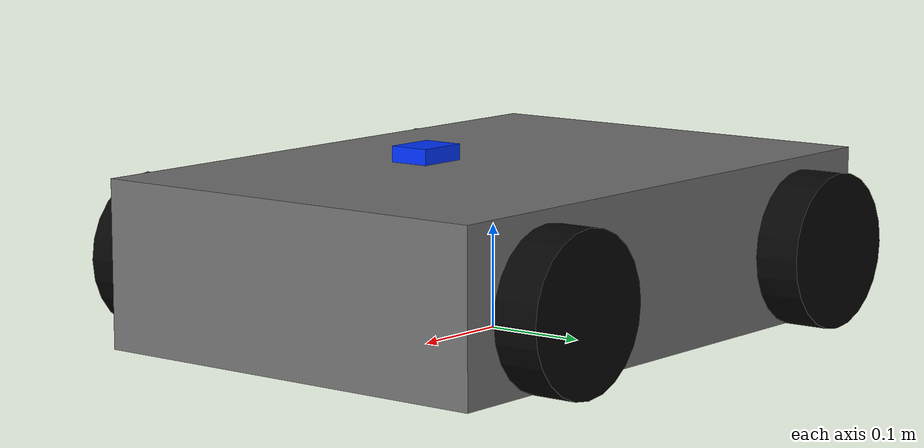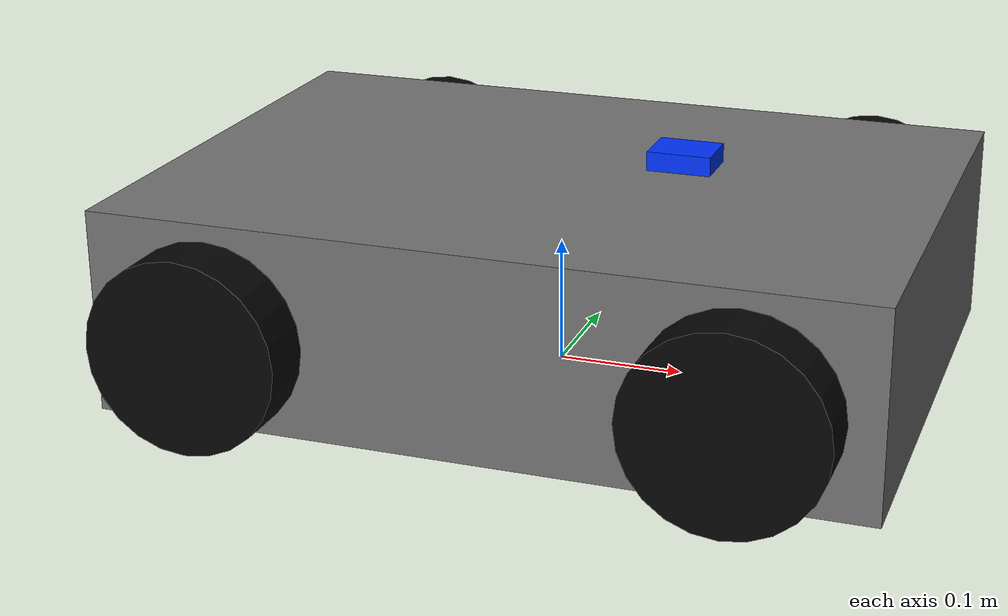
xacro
<?xml version="1.0"?>
<robot name="rf_pnt50_robot" xmlns:xacro="http://www.ros.org/wiki/xacro">

  <!-- Robot size parameters -->

  <xacro:property name="base_length" value="0.60"/>
  <xacro:property name="base_width"  value="0.42"/>
  <xacro:property name="base_height" value="0.16"/>

  <xacro:property name="wheel_radius" value="0.075"/>
  <xacro:property name="wheel_width"  value="0.045"/>

  <xacro:property name="front_wheel_x" value="0.20"/>
  <xacro:property name="rear_wheel_x"  value="-0.20"/>
  <xacro:property name="wheel_y"       value="0.24"/>
  <xacro:property name="wheel_z"       value="0.075"/>

  <!-- base_link -->

  <link name="base_link">
    <visual>
      <origin xyz="0 0 ${base_height / 2.0}" rpy="0 0 0"/>
      <geometry>
        <box size="${base_length} ${base_width} ${base_height}"/>
      </geometry>
      <material name="body_gray">
        <color rgba="0.45 0.45 0.45 1.0"/>
      </material>
    </visual>

    <collision>
      <origin xyz="0 0 ${base_height / 2.0}" rpy="0 0 0"/>
      <geometry>
        <box size="${base_length} ${base_width} ${base_height}"/>
      </geometry>
    </collision>

    <inertial>
      <origin xyz="0 0 ${base_height / 2.0}" rpy="0 0 0"/>
      <mass value="20.0"/>
      <inertia
        ixx="1.0" ixy="0.0" ixz="0.0"
        iyy="1.0" iyz="0.0"
        izz="1.0"/>
    </inertial>
  </link>

  <!-- left front wheel -->

  <link name="left_front_wheel_link">
    <visual>
      <origin xyz="0 0 0" rpy="1.5708 0 0"/>
      <geometry>
        <cylinder radius="${wheel_radius}" length="${wheel_width}"/>
      </geometry>
      <material name="wheel_black">
        <color rgba="0.02 0.02 0.02 1.0"/>
      </material>
    </visual>
  </link>

  <joint name="left_front_wheel_joint" type="fixed">
    <parent link="base_link"/>
    <child link="left_front_wheel_link"/>
    <origin xyz="${front_wheel_x} ${wheel_y} ${wheel_z}" rpy="0 0 0"/>
  </joint>

  <!-- left rear wheel -->

  <link name="left_rear_wheel_link">
    <visual>
      <origin xyz="0 0 0" rpy="1.5708 0 0"/>
      <geometry>
        <cylinder radius="${wheel_radius}" length="${wheel_width}"/>
      </geometry>
      <material name="wheel_black">
        <color rgba="0.02 0.02 0.02 1.0"/>
      </material>
    </visual>
  </link>

  <joint name="left_rear_wheel_joint" type="fixed">
    <parent link="base_link"/>
    <child link="left_rear_wheel_link"/>
    <origin xyz="${rear_wheel_x} ${wheel_y} ${wheel_z}" rpy="0 0 0"/>
  </joint>

  <!-- right front wheel -->

  <link name="right_front_wheel_link">
    <visual>
      <origin xyz="0 0 0" rpy="1.5708 0 0"/>
      <geometry>
        <cylinder radius="${wheel_radius}" length="${wheel_width}"/>
      </geometry>
      <material name="wheel_black">
        <color rgba="0.02 0.02 0.02 1.0"/>
      </material>
    </visual>
  </link>

  <joint name="right_front_wheel_joint" type="fixed">
    <parent link="base_link"/>
    <child link="right_front_wheel_link"/>
    <origin xyz="${front_wheel_x} ${-wheel_y} ${wheel_z}" rpy="0 0 0"/>
  </joint>

  <!-- right rear wheel -->

  <link name="right_rear_wheel_link">
    <visual>
      <origin xyz="0 0 0" rpy="1.5708 0 0"/>
      <geometry>
        <cylinder radius="${wheel_radius}" length="${wheel_width}"/>
      </geometry>
      <material name="wheel_black">
        <color rgba="0.02 0.02 0.02 1.0"/>
      </material>
    </visual>
  </link>

  <joint name="right_rear_wheel_joint" type="fixed">
    <parent link="base_link"/>
    <child link="right_rear_wheel_link"/>
    <origin xyz="${rear_wheel_x} ${-wheel_y} ${wheel_z}" rpy="0 0 0"/>
  </joint>

  <!-- imu_link -->

  <link name="imu_link">
    <visual>
      <origin xyz="0 0 0" rpy="0 0 0"/>
      <geometry>
        <box size="0.05 0.04 0.015"/>
      </geometry>
      <material name="imu_blue">
        <color rgba="0.0 0.2 1.0 1.0"/>
      </material>
    </visual>
  </link>

  <joint name="imu_joint" type="fixed">
    <parent link="base_link"/>
    <child link="imu_link"/>
    <origin xyz="0.10 0.00 0.18" rpy="0 0 0"/>
  </joint>

</robot>
